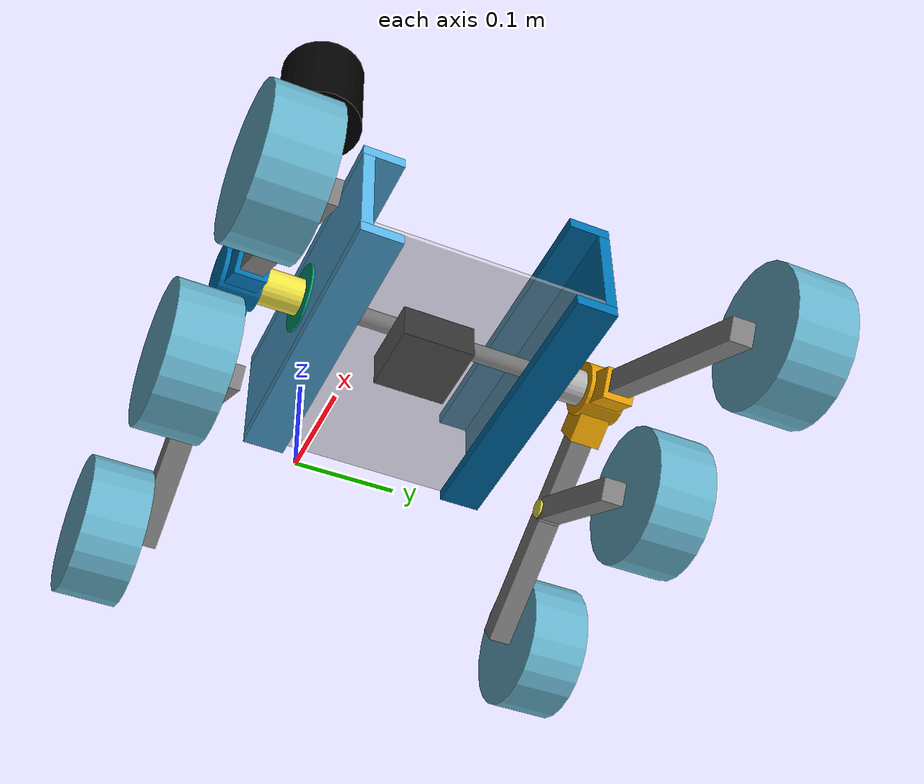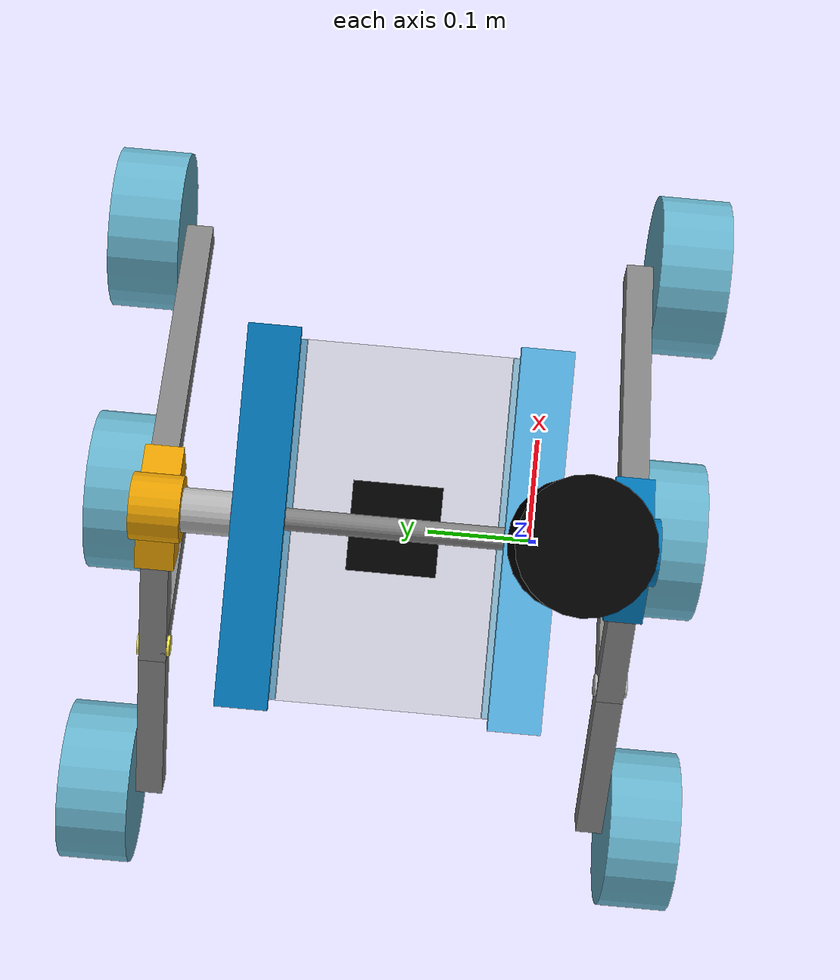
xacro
<?xml version="1.0"?>

<robot xmlns:xacro="http://www.ros.org/wiki/xacro" name="minesweeper">
  <link name = "link"/>

    <!--Central platform-->

  <xacro:property name="c_middle_x" value="0.328"/>
  <xacro:property name="c_middle_y" value="0.0127"/>
  <xacro:property name="c_middle_z" value="0.105"/>

  <xacro:property name="c_top_x" value="0.328"/>
  <xacro:property name="c_top_y" value="0.0457"/>
  <xacro:property name="c_top_z" value="0.0127"/>

   <link name="base_link">

    <visual>
      <geometry>
        <box size="${c_middle_x} ${c_middle_y} ${c_middle_z}"/>
      </geometry>
      <origin xyz = "0 0 ${c_middle_z/2}"/>
    </visual>
    <collision>
      <geometry>
        <box size="${c_middle_x} ${c_middle_y} ${c_middle_z}"/>
      </geometry>
      <origin xyz = "0 0 ${c_middle_z/2}"/>
    </collision>

    <visual>
      <geometry>
        <box size="${c_top_x} ${c_top_y} ${c_top_z}"/>
      </geometry>
      <origin xyz = "0 ${c_top_y/2 - c_middle_y/2} ${c_middle_z + c_top_z/2}"/>
    </visual>
    <collision>
      <geometry>
        <box size="${c_top_x} ${c_top_y} ${c_top_z}"/>
      </geometry>
      <origin xyz = "0 ${c_top_y/2 - c_middle_y/2} ${c_middle_z + c_top_z/2}"/>
    </collision>

    <visual>
      <geometry>
        <box size="${c_top_x} ${c_top_y} ${c_top_z}"/>
      </geometry>
      <origin xyz = "0 ${c_top_y/2 - c_middle_y/2} ${- c_top_z/2}"/>
    </visual>
    <collision>
      <geometry>
        <box size="${c_top_x} ${c_top_y} ${c_top_z}"/>
      </geometry>
      <origin xyz = "0 ${c_top_y/2 - c_middle_y/2} ${- c_top_z/2}"/>
    </collision>

    <inertial>
      <origin xyz="${c_middle_x} ${c_middle_y} ${c_middle_z}" rpy="0 0 0"/> <!-- Position and orientation of the inertia frame relative to the link frame -->
      <mass value="0.67"/> <!-- Mass of the link in kilograms -->
      <inertia ixx="${1/12*0.67*(c_middle_y**2 + c_middle_z**2)}" ixy="0" ixz="0" iyy="${1/12*0.67*(c_middle_x**2 + c_middle_z**2)}" iyz="0" izz="${1/12*0.67*(c_middle_y**2 + c_middle_x**2)}"/> <!-- Inertia tensor components in kg*m**2 -->
    </inertial>
  </link>

  <joint name = "base_joint" type="fixed">
    <parent link = "link"/>
    <child link="base_link"/>
    <origin xyz = "0 0 0.175"/> <!-- 0.1 just for visualization-->
  </joint>

<!-- Component Plate-->

  <xacro:property name="component_plate_x" value="0.3279"/>
  <xacro:property name="component_plate_y" value="0.254"/>
  <xacro:property name="component_plate_z" value="0.005"/>

  <xacro:property name="component_rod_length" value="0.254"/>
  <xacro:property name="component_rod_radius" value="0.01"/>

  <link name = "component_plate_link">

    <visual>
      <geometry>
        <box size = "${component_plate_x} ${component_plate_y} ${component_plate_z}"/>
      </geometry>
      <origin xyz = "0 0 0"/>
      <material name="translucent_glass">
        <color rgba="0.8 0.8 0.8 0.5"/> <!-- Adjust the RGBA values for your desired color and opacity -->
      </material>
    </visual>
    <collision>
      <geometry>
        <box size = "${component_plate_x} ${component_plate_y} ${component_plate_z}"/>
      </geometry>
      <origin xyz = "0 0 0"/>
    </collision>
    <inertial>
      <origin xyz="$0 0 0" rpy="0 0 0"/> <!-- Position and orientation of the inertia frame relative to the link frame -->
      <mass value="0.55"/> <!-- Mass of the link in kilograms -->
      <inertia ixx="${1/12*0.55*(component_plate_y**2 + component_plate_z**2)}" ixy="0" ixz="0" iyy="${1/12*0.55*(component_plate_x**2 + component_plate_z**2)}" iyz="0" izz="${1/12*0.55*(component_plate_y**2 + component_plate_x**2)}"/> <!-- Inertia tensor components in kg*m**2 -->
    </inertial>

    <visual>
      <geometry>
        <cylinder length="${component_rod_length}" radius="${component_rod_radius}"/>
      </geometry>
      <origin xyz = "0 0 ${c_middle_z/2}" rpy = "${pi/2} 0 0"/>
      <material name="steel">
        <color rgba="0.5 0.5 0.5 1"/> <!-- Adjust the RGBA values for your desired color and opacity -->
      </material>
    </visual>
    <collision>
      <geometry>
        <cylinder length="${component_rod_length}" radius="${component_rod_radius}"/>
      </geometry>
      <origin xyz = "0 0 ${c_middle_z/2}" rpy = "${pi/2} 0 0"/>
    </collision>
    <inertial>
      <origin xyz="$0 0 ${c_middle_z/2}" rpy="0 0 0"/> <!-- Position and orientation of the inertia frame relative to the link frame -->
      <mass value="0.8"/> <!-- Mass of the link in kilograms -->
      <inertia ixx="${1/12*0.8*(3*component_rod_radius**2 + component_rod_length**2)}" ixy="0" ixz="0" iyy="${1/12*0.8*(3*component_rod_radius**2 + component_rod_length**2)}" iyz="0" izz="${1/2*0.8*component_rod_radius**2}"/> <!-- Inertia tensor components in kg*m**2 -->
    </inertial>

  </link>

  <joint name = "component_plate_joint" type="fixed">
    <parent link = "base_link"/>
    <child link = "component_plate_link"/>
    <origin xyz = "0 ${component_plate_y/2 + c_middle_y/2} ${component_plate_z/2}"/>
  </joint>

<!-- ELEC BOX -->

  <xacro:property name="elec_box_x" value="0.08"/>
  <xacro:property name="elec_box_y" value="0.08"/>
  <xacro:property name="elec_box_z" value="0.04"/>

  <link name="elec_box_link">
    <visual>
      <geometry>
        <box size="${elec_box_x} ${elec_box_y} ${elec_box_z}"/>
      </geometry>
      <origin xyz = "0 0 0"/>
                <material name="steel">
        <color rgba="0 0 0 1"/>
        <!-- Adjust the RGBA values for your desired color and opacity -->
      </material>
    </visual>
    <collision>
      <geometry>
        <box size="${elec_box_x} ${elec_box_y} ${elec_box_z}"/>
      </geometry>
      <origin xyz = "0 0 0"/>
    </collision>
    <inertial>
      <origin xyz="0 0 0" rpy="0 0 0"/> <!-- Position and orientation of the inertia frame relative to the link frame -->
      <mass value="1.0"/> <!-- Mass of the link in kilograms -->
      <inertia ixx="${1/12*1*(elec_box_y**2+elec_box_z**2)}" ixy="0" ixz="0" iyy="${1/12*1*(elec_box_x**2+elec_box_z**2)}" iyz="0" izz="${1/12*1*(elec_box_y**2+elec_box_x**2)}"/> <!-- Inertia tensor components in kg*m**2 -->
    </inertial>
  </link>

  <joint name = "elec_box_joint" type="fixed">
    <parent link = "component_plate_link"/>
    <child link = "elec_box_link"/>
    <origin xyz = "0 0 ${component_plate_z/2 + elec_box_z/2}"/>
  </joint>

<!-- MIRROR OF THE ABOVE -->

  <link name="mirror_base_link">
    <visual>
      <geometry>
        <box size="${c_middle_x} ${c_middle_y} ${c_middle_z}"/>
      </geometry>
      <origin xyz = "0 0 ${c_middle_z/2}"/>
    </visual>
    <collision>
      <geometry>
        <box size="${c_middle_x} ${c_middle_y} ${c_middle_z}"/>
      </geometry>
      <origin xyz = "0 0 ${c_middle_z/2}"/>
    </collision>

    <visual>
      <geometry>
        <box size="${c_top_x} ${c_top_y} ${c_top_z}"/>
      </geometry>
      <origin xyz = "0 ${-c_top_y/2 + c_middle_y/2} ${c_middle_z + c_top_z/2}"/>
    </visual>
    <collision>
      <geometry>
        <box size="${c_top_x} ${c_top_y} ${c_top_z}"/>
      </geometry>
      <origin xyz = "0 ${-c_top_y/2 + c_middle_y/2} ${c_middle_z + c_top_z/2}"/>
    </collision>

    <visual>
      <geometry>
        <box size="${c_top_x} ${c_top_y} ${c_top_z}"/>
      </geometry>
      <origin xyz = "0 ${-c_top_y/2 + c_middle_y/2} ${- c_top_z/2}"/>
    </visual>
    <collision>
      <geometry>
        <box size="${c_top_x} ${c_top_y} ${c_top_z}"/>
      </geometry>
      <origin xyz = "0 ${-c_top_y/2 + c_middle_y/2} ${- c_top_z/2}"/>
    </collision>
    <inertial>
      <origin xyz="0 0 ${c_middle_z/2}" rpy="0 0 0"/> <!-- Position and orientation of the inertia frame relative to the link frame -->
      <mass value="0.67"/> <!-- Mass of the link in kilograms -->
      <inertia ixx="${1/12*0.67*(c_middle_y**2+c_middle_z**2)}" ixy="0" ixz="0" iyy="${1/12*0.67*(c_middle_x**2+c_middle_z**2)}" iyz="0" izz="${1/12*0.67*(c_middle_y**2+c_middle_x**2)}"/> <!-- Inertia tensor components in kg*m**2 -->
    </inertial>
  </link>

  <joint name = "mirror_base_joint" type="fixed">
    <parent link = "base_link"/>
    <child link = "mirror_base_link"/>
    <origin xyz = "0 ${component_plate_y + c_middle_y} 0"/>
  </joint>

<!-- Left Side Structure -->

  <xacro:include filename="dc_left_xacro.xacro"/>

  <joint name="left_xacro_joint" type="fixed">
    <parent link="mirror_base_link"/>
    <child link="left_base_link"/> <!-- Assuming there's a link in left_xacro.xacro named base_link_left_xacro -->
    <origin xyz="0 ${c_middle_y/2} ${c_middle_z/2}"/> <!-- Adjust the origin as needed -->
  </joint>

<!-- Right Side Structure -->

  <xacro:include filename="dc_right_xacro.xacro"/>

  <joint name="right_xacro_joint" type="fixed">
    <parent link="mirror_base_link"/>
    <child link="right_base_link"/> <!-- Assuming there's a link in left_xacro.xacro named base_link_left_xacro -->
    <origin xyz="0 ${-3*c_middle_y/2 - component_plate_y} ${c_middle_z/2}"/> <!-- Adjust the origin as needed -->
  </joint>

  <!-- Transmissions for wheel velocity controllers -->
  <transmission name="wheel1_trans">
    <type>transmission_interface/SimpleTransmission</type>
    <joint name="r_wheel_one_joint">
      <hardwareInterface>hardware_interface/EffortJointInterface</hardwareInterface>
    </joint>
    <actuator name="motor1">
      <hardwareInterface>hardware_interface/EffortJointInterface</hardwareInterface>
      <mechanicalReduction>1</mechanicalReduction>
    </actuator>
  </transmission>

  <transmission name="wheel2_trans">
    <type>transmission_interface/SimpleTransmission</type>
    <joint name="r_wheel_two_joint">
      <hardwareInterface>hardware_interface/EffortJointInterface</hardwareInterface>
    </joint>
    <actuator name="motor2">
      <hardwareInterface>hardware_interface/EffortJointInterface</hardwareInterface>
      <mechanicalReduction>1</mechanicalReduction>
    </actuator>
  </transmission>

  <transmission name="wheel3_trans">
    <type>transmission_interface/SimpleTransmission</type>
    <joint name="r_wheel_three_joint">
      <hardwareInterface>hardware_interface/EffortJointInterface</hardwareInterface>
    </joint>
    <actuator name="motor3">
      <hardwareInterface>hardware_interface/EffortJointInterface</hardwareInterface>
      <mechanicalReduction>1</mechanicalReduction>
    </actuator>
  </transmission>

  <transmission name="wheel4_trans">
    <type>transmission_interface/SimpleTransmission</type>
    <joint name="wheel_one_joint">
      <hardwareInterface>hardware_interface/EffortJointInterface</hardwareInterface>
    </joint>
    <actuator name="motor4">
      <hardwareInterface>hardware_interface/EffortJointInterface</hardwareInterface>
      <mechanicalReduction>1</mechanicalReduction>
    </actuator>
  </transmission>

  <transmission name="wheel5_trans">
    <type>transmission_interface/SimpleTransmission</type>
    <joint name="wheel_two_joint">
      <hardwareInterface>hardware_interface/EffortJointInterface</hardwareInterface>
    </joint>
    <actuator name="motor5">
      <hardwareInterface>hardware_interface/EffortJointInterface</hardwareInterface>
      <mechanicalReduction>1</mechanicalReduction>
    </actuator>
  </transmission>

  <transmission name="wheel6_trans">
    <type>transmission_interface/SimpleTransmission</type>
    <joint name="wheel_three_joint">
      <hardwareInterface>hardware_interface/EffortJointInterface</hardwareInterface>
    </joint>
    <actuator name="motor6">
      <hardwareInterface>hardware_interface/EffortJointInterface</hardwareInterface>
      <mechanicalReduction>1</mechanicalReduction>
    </actuator>
  </transmission>

<!-- DETECTOR -->

    <!-- LiDAR Sensor -->
  <link name="lidar_link">
    <visual>
      <geometry>
        <cylinder length="0.1" radius="0.05"/>
      </geometry>
      <origin xyz="0 0 0.2" rpy="0 0 0"/>
      <material name="black">
        <color rgba="0 0 0 1"/>
      </material>
    </visual>
  </link>

  <joint name="lidar_joint" type="fixed">
    <parent link="base_link"/>
    <child link="lidar_link"/>
    <origin xyz="0 0 0.2" rpy="0 0 0"/>
  </joint>

  <gazebo reference="lidar_link">
  <sensor type="ray" name="lidar_sensor">
    <pose>0 0 0 0 0 0</pose>
    <visualize>true</visualize>
    <update_rate>30.0</update_rate>
    <ray>
      <scan>
        <horizontal>
          <samples>720</samples>
          <resolution>1</resolution>
          <min_angle>-1.570796</min_angle>
          <max_angle>1.570796</max_angle>
        </horizontal>
      </scan>
      <range>
        <min>0</min>
        <max>0</max>
        <resolution>0.01</resolution>
      </range>
    </ray>
    <plugin name="gazebo_ros_laser_controller" filename="libgazebo_ros_laser.so">
      <topicName>/scan</topicName>
      <frameName>lidar_link</frameName>
    </plugin>
  </sensor>
</gazebo>
<gazebo>
  <plugin name="gazebo_ros_control" filename="libgazebo_ros_control.so">
    <robotNamespace>/</robotNamespace>
  </plugin>
</gazebo>
</robot>

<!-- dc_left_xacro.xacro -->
<robot xmlns:xacro="http://www.ros.org/wiki/xacro" name="minesweeper_left">

  <link name="left_base_link"/>

  <xacro:property name="circular_plate_length" value="0.005"/>
  <xacro:property name="circular_plate_radius" value="0.0375"/>

  <link name = "circular_plate_link">
    <visual>
        <geometry>
            <cylinder length="${circular_plate_length}" radius="${circular_plate_radius}"/>
        </geometry>
        <origin xyz = "0 0 0" rpy="${pi/2} 0 0"/>
    </visual>
    <collision>
        <geometry>
            <cylinder length="${circular_plate_length}" radius="${circular_plate_radius}"/>
        </geometry>
        <origin xyz = "0 0 0" rpy="${pi/2} 0 0"/>
    </collision>
    <inertial>
      <origin xyz="0 0 0" rpy="${pi/2} 0 0"/> <!-- Position and orientation of the inertia frame relative to the link frame -->
      <mass value="0.01"/> <!-- Mass of the link in kilograms -->
      <inertia ixx="${1/12*0.01*(3*circular_plate_radius**2 + circular_plate_length**2)}" ixy="0" ixz="0" iyy="${1/12*0.01*(3*circular_plate_radius**2 + circular_plate_length**2)}" iyz="0" izz="${1/2*0.01*circular_plate_radius**2}"/> <!-- Inertia tensor components in kg*m^2 -->

    </inertial>
  </link>

  <joint name="circular_plate_joint" type="fixed">
    <parent link="left_base_link"/>
    <child link="circular_plate_link"/>
  </joint>

  <xacro:property name="bracket_length" value="0.045"/>
  <xacro:property name="bracket_radius" value="0.02"/>

  <link name="bracket_link">
    <visual>
        <geometry>
            <cylinder length = "${bracket_length}" radius="${bracket_radius}"/>
        </geometry>
        <origin xyz = "0 0 0" rpy="0 0 0"/>
    </visual>
    <collision>
        <geometry>
            <cylinder length = "${bracket_length}" radius="${bracket_radius}"/>
        </geometry>
        <origin xyz = "0 0 0" rpy="0 0 0"/>
    </collision>
    <inertial>
      <origin xyz="0 0 0" rpy="0 0 0"/> <!-- Position and orientation of the inertia frame relative to the link frame -->
      <mass value="0.03"/> <!-- Mass of the link in kilograms -->
      <inertia ixx="${1/12*0.01*(3*bracket_radius**2 + bracket_length**2)}" ixy="0" ixz="0" iyy="${1/12*0.01*(3*bracket_radius**2 + bracket_length**2)}" iyz="0" izz="${1/2*0.01*bracket_radius**2}"/> <!-- Inertia tensor components in kg*m^2 -->
    </inertial>
  </link>

  <joint name="bracket_joint" type="fixed">
    <parent link ="left_base_link"/>
    <child link ="bracket_link"/>
    <origin xyz="0 ${circular_plate_length/2 + bracket_length/2} 0" rpy="${pi/2} 0 0"/>
  </joint>

  <xacro:property name="rot_bracket_length" value="0.045"/>
  <xacro:property name="rot_bracket_radius" value="0.03"/>
  <xacro:property name="leg_x" value="0.05"/>
  <xacro:property name="leg_y" value="0.035"/>
  <xacro:property name="leg_z" value="0.035"/>

  <link name = "rot_bracket_link">
    <visual>
        <geometry>
            <cylinder length = "${rot_bracket_length}" radius="${rot_bracket_radius}"/>
        </geometry>
        <origin xyz = "0 0 0" rpy="0 0 0"/>
    </visual>
    <collision>
        <geometry>
            <cylinder length = "${rot_bracket_length}" radius="${rot_bracket_radius}"/>
        </geometry>
        <origin xyz = "0 0 0" rpy="0 0 0"/>
    </collision>
    <inertial>
      <origin xyz="0 0 0" rpy="0 0 0"/> <!-- Position and orientation of the inertia frame relative to the link frame -->
      <mass value="0.07"/> <!-- Mass of the link in kilograms -->
      <inertia ixx="${1/12*0.07*(3*rot_bracket_radius**2 + rot_bracket_length**2)}" ixy="0" ixz="0" iyy="${1/12*0.07*(3*rot_bracket_radius**2 + rot_bracket_length**2)}" iyz="0" izz="${1/2*0.07*rot_bracket_radius**2}"/> <!-- Inertia tensor components in kg*m^2 -->
    </inertial>

    <visual>
      <geometry>
        <box size = "${leg_x} ${leg_y} ${leg_z}"/>
      </geometry>
      <origin xyz = "${leg_x/2} ${-leg_y/2} 0" rpy="0 0 ${-pi/6}"/>
    </visual>
    <collision>
      <geometry>
        <box size = "${leg_x} ${leg_y} ${leg_z}"/>
      </geometry>
      <origin xyz = "${leg_x/2} ${-leg_y/2} 0" rpy="0 0 ${-pi/6}"/>
    </collision>

    <visual>
      <geometry>
        <box size = "${leg_x} ${leg_y} ${leg_z}"/>
      </geometry>
      <origin xyz = "${-leg_x/2} ${-leg_y/2} 0" rpy="0 0 ${pi/6}"/>
    </visual>
    <collision>
      <geometry>
        <box size = "${leg_x} ${leg_y} ${leg_z}"/>
      </geometry>
      <origin xyz = "${-leg_x/2} ${-leg_y/2} 0" rpy="0 0 ${pi/6}"/>
    </collision>
  </link>

  <joint name="rot_bracket_joint" type="fixed">
    <parent link ="bracket_link"/>
    <child link ="rot_bracket_link"/>
    <origin xyz= "0 0 ${-rot_bracket_length/2 - bracket_length/2}" rpy="0 0 0"/>
  </joint>

  <xacro:property name="metal_leg_x" value="0.25"/>
  <xacro:property name="metal_leg_y" value="0.025"/>
  <xacro:property name="metal_leg_z" value="0.025"/>

  <link name="metal_leg_link">
    <visual>
      <geometry>
        <box size = "${metal_leg_x} ${metal_leg_y} ${metal_leg_z}"/>
      </geometry>
      <origin xyz = "0 0 0" rpy="0 0 0"/>
      <material name="steel">
        <color rgba="0.5 0.5 0.5 1"/> <!-- Adjust the RGBA values for your desired color and opacity -->
      </material>
    </visual>
    <collision>
      <geometry>
        <box size = "${metal_leg_x} ${metal_leg_y} ${metal_leg_z}"/>
      </geometry>
      <origin xyz = "0 0 0" rpy="0 0 0"/>
    </collision>
    <inertial>
      <origin xyz="0 0 0" rpy="0 0 0"/> <!-- Position and orientation of the inertia frame relative to the link frame -->
      <mass value="1.4"/> <!-- Mass of the link in kilograms -->
      <inertia ixx="${1/12*1.4*(metal_leg_y**2+metal_leg_z**2)}" ixy="0" ixz="0" iyy="${1/12*1.4*(metal_leg_x**2+metal_leg_z**2)}" iyz="0" izz="${1/12*1.4*(metal_leg_y**2+metal_leg_x**2)}"/> <!-- Inertia tensor components in kg*m^2 -->
    </inertial>
  </link>

  <joint name = "metal_leg_joint" type="fixed">
    <parent link = "rot_bracket_link"/>
    <child link = "metal_leg_link"/>
    <origin xyz = "${(metal_leg_x/2 + rot_bracket_radius + 0.025) *0.866 } ${-1*(metal_leg_x/2 + rot_bracket_radius + 0.025) *0.5} 0" rpy = "0 0 ${-pi/6}"/>
  </joint>

  <xacro:property name="metal_leg_mirror_x" value="0.1"/>

  <link name="metal_leg_mirror_link">
    <visual>
      <geometry>
        <box size = "${metal_leg_mirror_x} ${metal_leg_y} ${metal_leg_z}"/>
      </geometry>
      <origin xyz = "0 0 0" rpy="0 0 0"/>
      <material name="steel">
        <color rgba="0.5 0.5 0.5 1"/> <!-- Adjust the RGBA values for your desired color and opacity -->
      </material>
    </visual>
    <collision>
      <geometry>
        <box size = "${metal_leg_mirror_x} ${metal_leg_y} ${metal_leg_z}"/>
      </geometry>
      <origin xyz = "0 0 0" rpy="0 0 0"/>
    </collision>
    <inertial>
      <origin xyz="0 0 0" rpy="0 0 0"/> <!-- Position and orientation of the inertia frame relative to the link frame -->
      <mass value="0.1"/> <!-- Mass of the link in kilograms -->
      <inertia ixx="${1/12*0.1*(metal_leg_y**2+metal_leg_z**2)}" ixy="0" ixz="0" iyy="${1/12*0.1*(metal_leg_mirror_x**2+metal_leg_z**2)}" iyz="0" izz="${1/12*0.1*(metal_leg_y**2+metal_leg_mirror_x**2)}"/> <!-- Inertia tensor components in kg*m^2 -->
    </inertial>
  </link>

  <joint name = "metal_leg_mirror_joint" type="fixed">
    <parent link = "rot_bracket_link"/>
    <child link = "metal_leg_mirror_link"/>
    <origin xyz = "${-1*(metal_leg_mirror_x/2  + rot_bracket_radius + 0.025) *0.866 } ${-1*(metal_leg_mirror_x/2 + rot_bracket_radius+ 0.025) *0.5} 0" rpy = "0 0 ${pi/6}"/>
  </joint>

  <xacro:property name="bjw_o_radius" value="0.01"/>
  <xacro:property name="bjw_o_length" value="0.03"/>

  <link name="bjw_link">
    <visual>
      <geometry>
        <cylinder radius="${bjw_o_radius}" length="${bjw_o_length}"/>
      </geometry>
      <origin xyz="0 0 0" rpy="0 0 0"/>
    </visual>
    <collision>
      <geometry>
        <cylinder radius="${bjw_o_radius}" length="${bjw_o_length}"/>
      </geometry>
      <origin xyz="0 0 0" rpy="0 0 0"/>
    </collision>
    <inertial>
      <origin xyz="0 0 0" rpy="0 0 0"/> <!-- Position and orientation of the inertia frame relative to the link frame -->
      <mass value="0.03"/> <!-- Mass of the link in kilograms -->
      <inertia ixx="${1/12*0.03*(3*bjw_o_radius**2 + bjw_o_length**2)}" ixy="0" ixz="0" iyy="${1/12*0.03*(3*bjw_o_radius**2 + bjw_o_length**2)}" iyz="0" izz="${1/2*0.03*bjw_o_radius**2}"/> <!-- Inertia tensor components in kg*m^2 -->
    </inertial>
  </link>

  <joint name="bjw_joint" type="revolute">
    <parent link="metal_leg_mirror_link"/>
    <child link="bjw_link"/>
    <origin xyz ="${-1*(metal_leg_mirror_x/2-bjw_o_radius)} 0 0" rpy="0 0 0"/>
    <limit lower="-2" upper="0" effort="10" velocity="3"/>
    <axis xyz = "0 0 1"/>
  </joint>

  <link name = "short_leg_link">
    <visual>
      <geometry>
        <box size="${metal_leg_x - metal_leg_mirror_x + bjw_o_radius} ${metal_leg_y} ${metal_leg_z}" rpy="0 0 0"/>
      </geometry>
      <material name="steel">
        <color rgba="0.5 0.5 0.5 1"/> <!-- Adjust the RGBA values for your desired color and opacity -->
      </material>
      <origin xyz="0 0 0" rpy="0 0 0"/>
    </visual>
    <collision>
      <geometry>
        <box size="${metal_leg_x - metal_leg_mirror_x + bjw_o_radius} ${metal_leg_y} ${metal_leg_z}" rpy="0 0 0"/>
      </geometry>
      <origin xyz="0 0 0" rpy="0 0 0"/>
    </collision>
    <inertial>
      <origin xyz="0 0 0" rpy="0 0 0"/> <!-- Position and orientation of the inertia frame relative to the link frame -->
      <mass value="0.05"/> <!-- Mass of the link in kilograms -->
      <inertia ixx="${1/12*0.05*(metal_leg_y**2 + metal_leg_z**2)}" ixy="0" ixz="0" iyy="${1/12*0.05*((metal_leg_x - metal_leg_mirror_x + bjw_o_radius)**2 + metal_leg_z**2)}" iyz="0" izz="${1/12*0.05*((metal_leg_x - metal_leg_mirror_x + bjw_o_radius)**2 + metal_leg_y**2)}"/> <!-- Inertia tensor components in kg*m^2 -->
    </inertial>
  </link>

  <joint name="short_leg_joint" type="fixed">
    <parent link="bjw_link"/>
    <child link="short_leg_link"/>
    <origin xyz="${-1*(metal_leg_x - metal_leg_mirror_x + bjw_o_radius)/2} 0 0" rpy="0 0 0"/>
  </joint>

    <link name = "short_leg_two_link">
    <visual>
      <geometry>
        <box size="${metal_leg_x - metal_leg_mirror_x + bjw_o_radius} ${metal_leg_y} ${metal_leg_z}" rpy="0 0 0"/>
      </geometry>
      <origin xyz="${(metal_leg_x - metal_leg_mirror_x + bjw_o_radius)/2} 0 0" rpy="0 0 0"/>
      <material name="steel">
        <color rgba="0.5 0.5 0.5 1"/> <!-- Adjust the RGBA values for your desired color and opacity -->
      </material>
    </visual>
    <collision>
      <geometry>
        <box size="${metal_leg_x - metal_leg_mirror_x + bjw_o_radius} ${metal_leg_y} ${metal_leg_z}" rpy="0 0 0"/>
      </geometry>
      <origin xyz="${(metal_leg_x - metal_leg_mirror_x + bjw_o_radius)/2} 0 0" rpy="0 0 0"/>
    </collision>
    <inertial>
      <origin xyz="${(metal_leg_x - metal_leg_mirror_x + bjw_o_radius)/2} 0 0" rpy="0 0 0"/> <!-- Position and orientation of the inertia frame relative to the link frame -->
      <mass value="0.05"/> <!-- Mass of the link in kilograms -->
      <inertia ixx="${1/12*0.05*(metal_leg_z**2 + metal_leg_y**2)}" ixy="0" ixz="0" iyy="${1/12*0.05*(metal_leg_z**2 + (metal_leg_x - metal_leg_mirror_x + bjw_o_radius)**2)}" iyz="0" izz="${1/12*0.05*(metal_leg_y**2 + (metal_leg_x - metal_leg_mirror_x + bjw_o_radius)**2)}"/> <!-- Inertia tensor components in kg*m^2 -->
    </inertial>
  </link>

  <joint name="short_leg_two_joint" type="fixed">
    <parent link="bjw_link"/>
    <child link="short_leg_two_link"/>
    <origin xyz="0 0 0" rpy="0 0 ${-pi/3}"/>
  </joint>

  <xacro:property name="wheel_length" value="0.065"/>
  <xacro:property name="wheel_radius" value="0.075"/>

  <link name="wheel_one">
    <visual>
      <geometry>
        <cylinder length="${wheel_length}" radius="${wheel_radius}"/>
      </geometry>
      <origin xyz="0 0 0" rpy="0 0 0"/>
      <material name="steel">
        <color rgba="0.4 0.7 0.8 1"/> <!-- Adjust the RGBA values for your desired color and opacity -->
      </material>
    </visual>
    <collision>
      <geometry>
        <cylinder length="${wheel_length}" radius="${wheel_radius}"/>
      </geometry>
      <origin xyz="0 0 0" rpy="0 0 0"/>
    </collision>
    <inertial>
      <origin xyz="0 0 0" rpy="0 0 0"/> <!-- Position and orientation of the inertia frame relative to the link frame -->
      <mass value="0.05"/> <!-- Mass of the link in kilograms -->
      <inertia ixx="${1/12*0.5*(3*wheel_radius**2 + wheel_length**2)}" ixy="0" ixz="0" iyy="${1/12*0.5*(3*wheel_radius**2 + wheel_length**2)}" iyz="0" izz="${1/2*0.5*wheel_radius**2}"/> <!-- Inertia tensor components in kg*m^2 -->
    </inertial>
  </link>

  <joint name="wheel_one_joint" type="continuous">
    <parent link="metal_leg_link"/>
    <child link="wheel_one"/>
    <origin xyz="${metal_leg_x/2} 0 ${-1*(metal_leg_z/2+wheel_length/2)}" rpy="0 0 0"/>
    <axis xyz = "0 0 1"/>
  </joint>

  <link name="wheel_two">
    <visual>
      <geometry>
        <cylinder length="${wheel_length}" radius="${wheel_radius}"/>
      </geometry>
      <origin xyz="0 0 0" rpy="0 0 0"/>
      <material name="steel">
        <color rgba="0.4 0.7 0.8 1"/> <!-- Adjust the RGBA values for your desired color and opacity -->
      </material>
    </visual>
    <collision>
      <geometry>
        <cylinder length="${wheel_length}" radius="${wheel_radius}"/>
      </geometry>
      <origin xyz="0 0 0" rpy="0 0 0"/>
    </collision>
    <inertial>
      <origin xyz="0 0 0" rpy="0 0 0"/> <!-- Position and orientation of the inertia frame relative to the link frame -->
      <mass value="0.05"/> <!-- Mass of the link in kilograms -->
      <inertia ixx="${1/12*0.5*(3*wheel_radius**2 + wheel_length**2)}" ixy="0" ixz="0" iyy="${1/12*0.5*(3*wheel_radius**2 + wheel_length**2)}" iyz="0" izz="${1/2*0.5*wheel_radius**2}"/> <!-- Inertia tensor components in kg*m^2 -->
    </inertial>
  </link>

  <joint name="wheel_two_joint" type="continuous">
    <parent link="short_leg_two_link"/>
    <child link="wheel_two"/>
    <origin xyz="${(metal_leg_x - metal_leg_mirror_x + bjw_o_radius)} 0 ${-1*(metal_leg_z/2+wheel_length/2)}" rpy="0 0 0"/>
    <axis xyz="0 0 1"/>
  </joint>

  <link name="wheel_three">
    <visual>
      <geometry>
        <cylinder length="${wheel_length}" radius="${wheel_radius}"/>
      </geometry>
      <origin xyz="0 0 0" rpy="0 0 0"/>
      <material name="steel">
        <color rgba="0.4 0.7 0.8 1"/> <!-- Adjust the RGBA values for your desired color and opacity -->
      </material>
    </visual>
    <collision>
      <geometry>
        <cylinder length="${wheel_length}" radius="${wheel_radius}"/>
      </geometry>
      <origin xyz="0 0 0" rpy="0 0 0"/>
    </collision>
    <inertial>
      <origin xyz="0 0 0" rpy="0 0 0"/> <!-- Position and orientation of the inertia frame relative to the link frame -->
      <mass value="0.05"/> <!-- Mass of the link in kilograms -->
      <inertia ixx="${1/12*0.5*(3*wheel_radius**2 + wheel_length**2)}" ixy="0" ixz="0" iyy="${1/12*0.5*(3*wheel_radius**2 + wheel_length**2)}" iyz="0" izz="${1/2*0.5*wheel_radius**2}"/> <!-- Inertia tensor components in kg*m^2 -->
    </inertial>
  </link>

  <joint name="wheel_three_joint" type="continuous">
    <parent link="short_leg_link"/>
    <child link="wheel_three"/>
    <origin xyz="${-1*(metal_leg_x - metal_leg_mirror_x + bjw_o_radius)/2} 0 ${-1*(metal_leg_z/2+wheel_length/2)}" rpy="0 0 0"/>
    <axis xyz = "0 0 1"/>
  </joint>

</robot>

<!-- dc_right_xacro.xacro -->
<robot xmlns:xacro="http://www.ros.org/wiki/xacro" name="minesweeper_right">

  <link name="right_base_link"/>

  <xacro:property name="r_circular_plate_length" value="0.005"/>
  <xacro:property name="r_circular_plate_radius" value="0.0375"/>

  <link name = "r_circular_plate_link">
    <visual>
        <geometry>
            <cylinder length="${r_circular_plate_length}" radius="${r_circular_plate_radius}"/>
        </geometry>
        <origin xyz = "0 0 0" rpy="${pi/2} 0 0"/>
    </visual>
    <collision>
        <geometry>
            <cylinder length="${r_circular_plate_length}" radius="${r_circular_plate_radius}"/>
        </geometry>
        <origin xyz = "0 0 0" rpy="${pi/2} 0 0"/>
    </collision>
    <inertial>
      <origin xyz="0 0 0" rpy="${pi/2} 0 0"/> <!-- Position and orientation of the inertia frame relative to the link frame -->
      <mass value="0.01"/> <!-- Mass of the link in kilograms -->
      <inertia ixx="${1/12*0.01*(3*r_circular_plate_radius**2 + r_circular_plate_length**2)}" ixy="0" ixz="0" iyy="${1/12*0.01*(3*r_circular_plate_radius**2 + r_circular_plate_length**2)}" iyz="0" izz="${1/2*0.01*r_circular_plate_radius**2}"/> <!-- Inertia tensor components in kg*m^2 -->
    </inertial>
  </link>

  <joint name="r_circular_plate_joint" type="fixed">
    <parent link="right_base_link"/>
    <child link="r_circular_plate_link"/>
  </joint>

  <xacro:property name="r_bracket_length" value="0.045"/>
  <xacro:property name="r_bracket_radius" value="0.02"/>

  <link name="r_bracket_link">
    <visual>
        <geometry>
            <cylinder length = "${r_bracket_length}" radius="${r_bracket_radius}"/>
        </geometry>
        <origin xyz = "0 0 0" rpy="0 0 0"/>
    </visual>
    <collision>
        <geometry>
            <cylinder length = "${r_bracket_length}" radius="${r_bracket_radius}"/>
        </geometry>
        <origin xyz = "0 0 0" rpy="0 0 0"/>
    </collision>
    <inertial>
      <origin xyz="0 0 0" rpy="0 0 0"/> <!-- Position and orientation of the inertia frame relative to the link frame -->
      <mass value="0.03"/> <!-- Mass of the link in kilograms -->
      <inertia ixx="${1/12*0.01*(3*r_bracket_radius**2 + r_bracket_length**2)}" ixy="0" ixz="0" iyy="${1/12*0.01*(3*r_bracket_radius**2 + r_bracket_length**2)}" iyz="0" izz="${1/2*0.01*r_bracket_radius**2}"/> <!-- Inertia tensor components in kg*m^2 -->
    </inertial>
  </link>

  <joint name="r_bracket_joint" type="fixed">
    <parent link ="r_circular_plate_link"/>
    <child link ="r_bracket_link"/>
    <origin xyz="0 ${-r_circular_plate_length/2  - r_bracket_length/2} 0" rpy="${pi/2} 0 0"/>
  </joint>

  <xacro:property name="r_rot_bracket_length" value="0.045"/>
  <xacro:property name="r_rot_bracket_radius" value="0.03"/>
  <xacro:property name="r_leg_x" value="0.06"/>
  <xacro:property name="r_leg_y" value="0.035"/>
  <xacro:property name="r_leg_z" value="0.035"/>

  <link name = "r_rot_bracket_link">
    <visual>
        <geometry>
            <cylinder length = "${r_rot_bracket_length}" radius="${r_rot_bracket_radius}"/>
        </geometry>
        <origin xyz = "0 0 0" rpy="0 0 0"/>
    </visual>
    <collision>
        <geometry>
            <cylinder length = "${r_rot_bracket_length}" radius="${r_rot_bracket_radius}"/>
        </geometry>
        <origin xyz = "0 0 0" rpy="0 0 0"/>
    </collision>
    <inertial>
      <origin xyz="0 0 0" rpy="0 0 0"/> <!-- Position and orientation of the inertia frame relative to the link frame -->
      <mass value="0.07"/> <!-- Mass of the link in kilograms -->
      <inertia ixx="${1/12*0.07*(3*r_rot_bracket_radius**2 + r_rot_bracket_length**2)}" ixy="0" ixz="0" iyy="${1/12*0.07*(3*r_rot_bracket_radius**2 + r_rot_bracket_length**2)}" iyz="0" izz="${1/2*0.07*r_rot_bracket_radius**2}"/> <!-- Inertia tensor components in kg*m^2 -->
    </inertial>

    <visual>
      <geometry>
        <box size = "${r_leg_x} ${r_leg_y} ${r_leg_z}"/>
      </geometry>
      <origin xyz = "${r_leg_x/2} ${-r_leg_y/2} 0" rpy="0 0 ${-pi/6}"/>
    </visual>
    <collision>
      <geometry>
        <box size = "${r_leg_x} ${r_leg_y} ${r_leg_z}"/>
      </geometry>
      <origin xyz = "${r_leg_x/2} ${-r_leg_y/2} 0" rpy="0 0 ${-pi/6}"/>
    </collision>

    <visual>
      <geometry>
        <box size = "${r_leg_x} ${r_leg_y} ${r_leg_z}"/>
      </geometry>
      <origin xyz = "${-r_leg_x/2} ${-r_leg_y/2} 0" rpy="0 0 ${pi/6}"/>
    </visual>
    <collision>
      <geometry>
        <box size = "${r_leg_x} ${r_leg_y} ${r_leg_z}"/>
      </geometry>
      <origin xyz = "${-r_leg_x/2} ${-r_leg_y/2} 0" rpy="0 0 ${pi/6}"/>
    </collision>
  </link>

  <joint name="r_rot_bracket_joint" type="fixed">
    <parent link ="r_bracket_link"/>
    <child link ="r_rot_bracket_link"/>
    <origin xyz= "0 0 ${r_rot_bracket_length/2 + r_bracket_length/2}" rpy="0 0 0"/>
    <limit lower="-1.57" upper="1.57" effort="10" velocity="3"/>
  </joint>

  <xacro:property name="r_metal_leg_x" value="0.25"/>
  <xacro:property name="r_metal_leg_y" value="0.025"/>
  <xacro:property name="r_metal_leg_z" value="0.025"/>

  <link name="r_metal_leg_link">
    <visual>
      <geometry>
        <box size = "${r_metal_leg_x} ${r_metal_leg_y} ${r_metal_leg_z}"/>
      </geometry>
      <origin xyz = "0 0 0" rpy="0 0 0"/>
      <material name="steel">
        <color rgba="0.5 0.5 0.5 1"/> <!-- Adjust the RGBA values for your desired color and opacity -->
      </material>
    </visual>
    <collision>
      <geometry>
        <box size = "${r_metal_leg_x} ${r_metal_leg_y} ${r_metal_leg_z}"/>
      </geometry>
      <origin xyz = "0 0 0" rpy="0 0 0"/>
    </collision>
    <inertial>
      <origin xyz="0 0 0" rpy="0 0 0"/> <!-- Position and orientation of the inertia frame relative to the link frame -->
      <mass value="1.4"/> <!-- Mass of the link in kilograms -->
      <inertia ixx="${1/12*1.4*(r_metal_leg_y**2+r_metal_leg_z**2)}" ixy="0" ixz="0" iyy="${1/12*1.4*(r_metal_leg_x**2+r_metal_leg_z**2)}" iyz="0" izz="${1/12*1.4*(r_metal_leg_y**2+r_metal_leg_x**2)}"/> <!-- Inertia tensor components in kg*m^2 -->
    </inertial>
  </link>

  <joint name = "r_metal_leg_joint" type="fixed">
    <parent link = "r_rot_bracket_link"/>
    <child link = "r_metal_leg_link"/>
    <origin xyz = "${(r_metal_leg_x/2 + r_rot_bracket_radius + 0.025) *0.866 } ${-1*(r_metal_leg_x/2 + r_rot_bracket_radius + 0.025) *0.5} 0" rpy = "0 0 ${-pi/6}"/>
  </joint>

  <xacro:property name="r_metal_leg_mirror_x" value="0.1"/>

  <link name="r_metal_leg_mirror_link">
    <visual>
      <geometry>
        <box size = "${r_metal_leg_mirror_x} ${r_metal_leg_y} ${r_metal_leg_z}"/>
      </geometry>
      <origin xyz = "0 0 0" rpy="0 0 0"/>
      <material name="steel">
        <color rgba="0.5 0.5 0.5 1"/> <!-- Adjust the RGBA values for your desired color and opacity -->
      </material>
    </visual>
    <collision>
      <geometry>
        <box size = "${r_metal_leg_mirror_x} ${r_metal_leg_y} ${r_metal_leg_z}"/>
      </geometry>
      <origin xyz = "0 0 0" rpy="0 0 0"/>
    </collision>
    <inertial>
      <origin xyz="0 0 0" rpy="0 0 0"/> <!-- Position and orientation of the inertia frame relative to the link frame -->
      <mass value="0.1"/> <!-- Mass of the link in kilograms -->
      <inertia ixx="${1/12*0.1*(r_metal_leg_y**2+r_metal_leg_z**2)}" ixy="0" ixz="0" iyy="${1/12*0.1*(r_metal_leg_mirror_x**2+r_metal_leg_z**2)}" iyz="0" izz="${1/12*0.1*(r_metal_leg_y**2+r_metal_leg_mirror_x**2)}"/> <!-- Inertia tensor components in kg*m^2 -->
    </inertial>

  </link>

  <joint name = "r_metal_leg_mirror_joint" type="fixed">
    <parent link = "r_rot_bracket_link"/>
    <child link = "r_metal_leg_mirror_link"/>
    <origin xyz = "${-1*(r_metal_leg_mirror_x/2  + r_rot_bracket_radius + 0.025) *0.866 } ${-1*(r_metal_leg_mirror_x/2 + r_rot_bracket_radius+ 0.025) *0.5} 0" rpy = "0 0 ${pi/6}"/>
  </joint>

  <xacro:property name="r_bjw_o_radius" value="0.01"/>
  <xacro:property name="r_bjw_o_length" value="0.03"/>

  <link name="r_bjw_link">
    <visual>
      <geometry>
        <cylinder radius="${r_bjw_o_radius}" length="${r_bjw_o_length}"/>
      </geometry>
      <origin xyz="0 0 0" rpy="0 0 0"/>
    </visual>
    <collision>
      <geometry>
        <cylinder radius="${r_bjw_o_radius}" length="${r_bjw_o_length}"/>
      </geometry>
      <origin xyz="0 0 0" rpy="0 0 0"/>
    </collision>
    <inertial>
      <origin xyz="0 0 0" rpy="0 0 0"/> <!-- Position and orientation of the inertia frame relative to the link frame -->
      <mass value="0.03"/> <!-- Mass of the link in kilograms -->
      <inertia ixx="${1/12*0.03*(3*r_bjw_o_radius**2 + r_bjw_o_length**2)}" ixy="0" ixz="0" iyy="${1/12*0.03*(3*r_bjw_o_radius**2 + r_bjw_o_length**2)}" iyz="0" izz="${1/2*0.03*r_bjw_o_radius**2}"/> <!-- Inertia tensor components in kg*m^2 -->
    </inertial>
  </link>

  <joint name="r_bjw_joint" type="revolute">
    <parent link="r_metal_leg_mirror_link"/>
    <child link="r_bjw_link"/>
    <origin xyz ="${-1*(r_metal_leg_mirror_x/2-r_bjw_o_radius)} 0 0" rpy="0 0 0"/>
    <limit lower="-2" upper="0" effort="10" velocity="3"/>
    <axis xyz = "0 0 1"/>
  </joint>

  <link name = "r_short_leg_link">
    <visual>
      <geometry>
        <box size="${r_metal_leg_x - r_metal_leg_mirror_x + r_bjw_o_radius} ${r_metal_leg_y} ${r_metal_leg_z}" rpy="0 0 0"/>
      </geometry>
      <material name="steel">
        <color rgba="0.5 0.5 0.5 1"/> <!-- Adjust the RGBA values for your desired color and opacity -->
      </material>
      <origin xyz="0 0 0" rpy="0 0 0"/>
    </visual>
    <collision>
      <geometry>
        <box size="${r_metal_leg_x - r_metal_leg_mirror_x + r_bjw_o_radius} ${r_metal_leg_y} ${r_metal_leg_z}" rpy="0 0 0"/>
      </geometry>
      <origin xyz="0 0 0" rpy="0 0 0"/>
    </collision>
    <inertial>
      <origin xyz="0 0 0" rpy="0 0 0"/> <!-- Position and orientation of the inertia frame relative to the link frame -->
      <mass value="0.05"/> <!-- Mass of the link in kilograms -->
      <inertia ixx="${1/12*0.05*(r_metal_leg_y**2 + r_metal_leg_z**2)}" ixy="0" ixz="0" iyy="${1/12*0.05*((r_metal_leg_x - r_metal_leg_mirror_x + r_bjw_o_radius)**2 + r_metal_leg_z**2)}" iyz="0" izz="${1/12*0.05*((r_metal_leg_x - r_metal_leg_mirror_x + r_bjw_o_radius)**2 + r_metal_leg_y**2)}"/> <!-- Inertia tensor components in kg*m^2 -->
    </inertial>
  </link>

  <joint name="r_short_leg_joint" type="fixed">
    <parent link="r_bjw_link"/>
    <child link="r_short_leg_link"/>
    <origin xyz="${-1*(r_metal_leg_x - r_metal_leg_mirror_x + r_bjw_o_radius)/2} 0 0" rpy="0 0 0"/>
  </joint>

    <link name = "r_short_leg_two_link">
    <visual>
      <geometry>
        <box size="${r_metal_leg_x - r_metal_leg_mirror_x + r_bjw_o_radius} ${r_metal_leg_y} ${r_metal_leg_z}" rpy="0 0 0"/>
      </geometry>
      <origin xyz="${(r_metal_leg_x - r_metal_leg_mirror_x + r_bjw_o_radius)/2} 0 0" rpy="0 0 0"/>
      <material name="steel">
        <color rgba="0.5 0.5 0.5 1"/> <!-- Adjust the RGBA values for your desired color and opacity -->
      </material>
    </visual>
    <collision>
      <geometry>
        <box size="${r_metal_leg_x - r_metal_leg_mirror_x + r_bjw_o_radius} ${r_metal_leg_y} ${r_metal_leg_z}" rpy="0 0 0"/>
      </geometry>
      <origin xyz="${(r_metal_leg_x - r_metal_leg_mirror_x + r_bjw_o_radius)/2} 0 0" rpy="0 0 0"/>
    </collision>
    <inertial>
      <origin xyz="${(r_metal_leg_x - r_metal_leg_mirror_x + r_bjw_o_radius)/2} 0 0" rpy="0 0 0"/> <!-- Position and orientation of the inertia frame relative to the link frame -->
      <mass value="0.05"/> <!-- Mass of the link in kilograms -->
      <inertia ixx="${1/12*0.05*(r_metal_leg_z**2 + r_metal_leg_y**2)}" ixy="0" ixz="0" iyy="${1/12*0.05*(r_metal_leg_z**2 + (r_metal_leg_x - r_metal_leg_mirror_x + r_bjw_o_radius)**2)}" iyz="0" izz="${1/12*0.05*(r_metal_leg_y**2 + (r_metal_leg_x - r_metal_leg_mirror_x + r_bjw_o_radius)**2)}"/> <!-- Inertia tensor components in kg*m^2 -->
    </inertial>
  </link>

  <joint name="r_short_leg_two_joint" type="fixed">
    <parent link="r_bjw_link"/>
    <child link="r_short_leg_two_link"/>
    <origin xyz="0 0 0" rpy="0 0 ${-pi/3}"/>
  </joint>

  <xacro:property name="r_wheel_length" value="0.065"/>
  <xacro:property name="r_wheel_radius" value="0.075"/>

  <link name="r_wheel_one">
    <visual>
      <geometry>
        <cylinder length="${r_wheel_length}" radius="${r_wheel_radius}"/>
      </geometry>
      <origin xyz="0 0 0" rpy="0 0 0"/>
      <material name="steel">
        <color rgba="0.4 0.7 0.8 1"/> <!-- Adjust the RGBA values for your desired color and opacity -->
      </material>
    </visual>
    <collision>
      <geometry>
        <cylinder length="${r_wheel_length}" radius="${r_wheel_radius}"/>
      </geometry>
      <origin xyz="0 0 0" rpy="0 0 0"/>
    </collision>
    <inertial>
      <origin xyz="0 0 0" rpy="0 0 0"/> <!-- Position and orientation of the inertia frame relative to the link frame -->
      <mass value="0.5"/> <!-- Mass of the link in kilograms -->
      <inertia ixx="${1/12*0.5*(3*r_wheel_radius**2 + r_wheel_length**2)}" ixy="0" ixz="0" iyy="${1/12*0.5*(3*r_wheel_radius**2 + r_wheel_length**2)}" iyz="0" izz="${1/2*0.5*r_wheel_radius**2}"/> <!-- Inertia tensor components in kg*m^2 -->
    </inertial>
  </link>

  <joint name="r_wheel_one_joint" type="continuous">
    <parent link="r_metal_leg_link"/>
    <child link="r_wheel_one"/>
    <origin xyz="${r_metal_leg_x/2} 0 ${1*(r_metal_leg_z/2 + r_wheel_length/2)}" rpy="0 0 0"/>
    <axis xyz = "0 0 1"/>
  </joint>

  <link name="r_wheel_two">
    <visual>
      <geometry>
        <cylinder length="${r_wheel_length}" radius="${r_wheel_radius}"/>
      </geometry>
      <origin xyz="0 0 0" rpy="0 0 0"/>
      <material name="steel">
        <color rgba="0.4 0.7 0.8 1"/> <!-- Adjust the RGBA values for your desired color and opacity -->
      </material>
    </visual>
    <collision>
      <geometry>
        <cylinder length="${r_wheel_length}" radius="${r_wheel_radius}"/>
      </geometry>
      <origin xyz="0 0 0" rpy="0 0 0"/>
    </collision>
    <inertial>
      <origin xyz="0 0 0" rpy="0 0 0"/> <!-- Position and orientation of the inertia frame relative to the link frame -->
      <mass value="0.5"/> <!-- Mass of the link in kilograms -->
      <inertia ixx="${1/12*0.5*(3*r_wheel_radius**2 + r_wheel_length**2)}" ixy="0" ixz="0" iyy="${1/12*0.5*(3*r_wheel_radius**2 + r_wheel_length**2)}" iyz="0" izz="${1/2*0.5*r_wheel_radius**2}"/> <!-- Inertia tensor components in kg*m^2 -->
    </inertial>
  </link>

  <joint name="r_wheel_two_joint" type="continuous">
    <parent link="r_short_leg_two_link"/>
    <child link="r_wheel_two"/>
    <origin xyz="${(r_metal_leg_x - r_metal_leg_mirror_x +r_bjw_o_radius)} 0 ${1*(r_metal_leg_z/2 + r_wheel_length/2)}" rpy="0 0 0"/>
    <axis xyz = "0  0 1"/>
  </joint>

  <link name="r_wheel_three">
    <visual>
      <geometry>
        <cylinder length="${r_wheel_length}" radius="${r_wheel_radius}"/>
      </geometry>
      <origin xyz="0 0 0" rpy="0 0 0"/>
      <material name="steel">
        <color rgba="0.4 0.7 0.8 1"/> <!-- Adjust the RGBA values for your desired color and opacity -->
      </material>
    </visual>
    <collision>
      <geometry>
        <cylinder length="${r_wheel_length}" radius="${r_wheel_radius}"/>
      </geometry>
      <origin xyz="0 0 0" rpy="0 0 0"/>
    </collision>
    <inertial>
      <origin xyz="0 0 0" rpy="0 0 0"/> <!-- Position and orientation of the inertia frame relative to the link frame -->
      <mass value="0.5"/> <!-- Mass of the link in kilograms -->
      <inertia ixx="${1/12*0.5*(3*r_wheel_radius**2 + r_wheel_length**2)}" ixy="0" ixz="0" iyy="${1/12*0.5*(3*r_wheel_radius**2 + r_wheel_length**2)}" iyz="0" izz="${1/2*0.5*r_wheel_radius**2}"/> <!-- Inertia tensor components in kg*m^2 -->
    </inertial>
  </link>

  <joint name="r_wheel_three_joint" type="continuous">
    <parent link="r_short_leg_link"/>
    <child link="r_wheel_three"/>
    <origin xyz="${-1*(r_metal_leg_x - r_metal_leg_mirror_x + r_bjw_o_radius)/2} 0 ${1*(r_metal_leg_z/2+r_wheel_length/2)}" rpy="0 0 0"/>
    <axis xyz = "0 0 1"/>
  </joint>

</robot>
